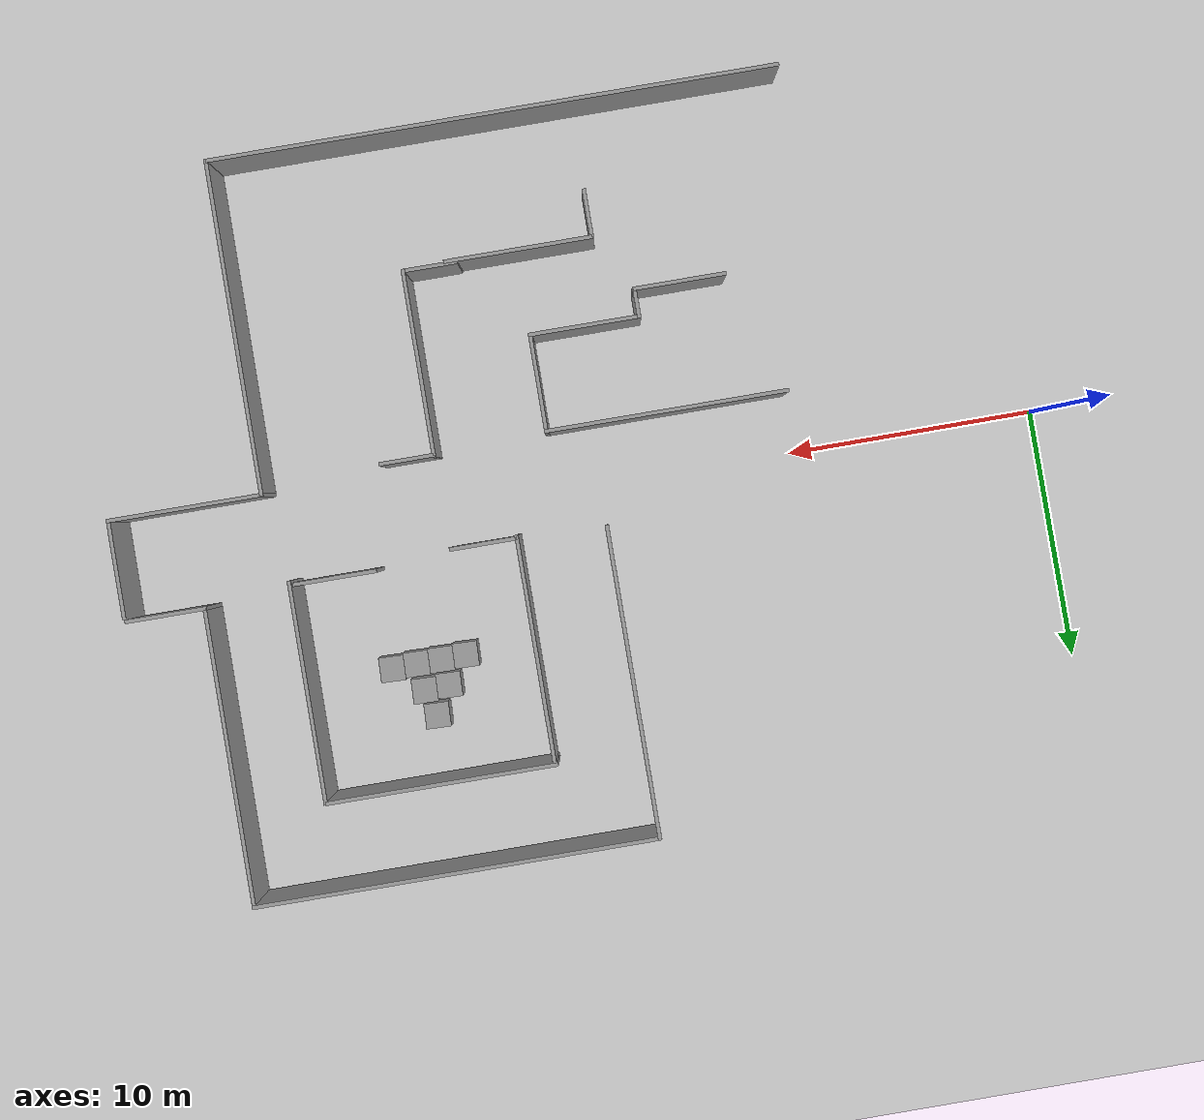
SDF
<sdf version="1.7">
 <world name="default">
  <model name="ground_plane">
   <static>1</static>
   <link name="link">
    <collision name="collision">
     <geometry><plane><normal>0 0 1</normal><size>100 100</size></plane></geometry>
     <surface><friction><ode><mu>100</mu><mu2>50</mu2></ode></friction></surface>
    </collision>
    <visual name="visual">
     <cast_shadows>0</cast_shadows>
     <geometry><plane><normal>0 0 1</normal><size>100 100</size></plane></geometry>
     <material>
      <script><uri>file://media/materials/scripts/gazebo.material</uri><name>Gazebo/Grey</name></script>
     </material>
    </visual>
   </link>
  </model>
  <model name="unit_box_clone_2">
   <pose>27.3089 5.88323 0.499995 0 -1e-05 -0.029595</pose>
   <link name="link">
    <inertial>
     <mass>1</mass>
     <inertia>
      <ixx>0.166667</ixx>
      <ixy>0</ixy>
      <ixz>0</ixz>
      <iyy>0.166667</iyy>
      <iyz>0</iyz>
      <izz>0.166667</izz>
     </inertia>
    </inertial>
    <collision name="collision"><geometry><box><size>1 1 1</size></box></geometry></collision>
    <visual name="visual">
     <geometry><box><size>1 1 1</size></box></geometry>
     <material>
      <script><name>Gazebo/Grey</name><uri>file://media/materials/scripts/gazebo.material</uri></script>
     </material>
    </visual>
   </link>
  </model>
  <model name="unit_box_clone_3">
   <pose>26.3071 5.84665 0.499995 0 -1e-05 -0.029863</pose>
   <link name="link">
    <inertial>
     <mass>1</mass>
     <inertia>
      <ixx>0.166667</ixx>
      <ixy>0</ixy>
      <ixz>0</ixz>
      <iyy>0.166667</iyy>
      <iyz>0</iyz>
      <izz>0.166667</izz>
     </inertia>
    </inertial>
    <collision name="collision"><geometry><box><size>1 1 1</size></box></geometry></collision>
    <visual name="visual">
     <geometry><box><size>1 1 1</size></box></geometry>
     <material>
      <script><name>Gazebo/Grey</name><uri>file://media/materials/scripts/gazebo.material</uri></script>
     </material>
    </visual>
   </link>
  </model>
  <model name="unit_box_clone_4">
   <pose>25.306 5.83515 0.499995 -1e-05 -0 -0.02955</pose>
   <link name="link">
    <inertial>
     <mass>1</mass>
     <inertia>
      <ixx>0.166667</ixx>
      <ixy>0</ixy>
      <ixz>0</ixz>
      <iyy>0.166667</iyy>
      <iyz>0</iyz>
      <izz>0.166667</izz>
     </inertia>
    </inertial>
    <collision name="collision"><geometry><box><size>1 1 1</size></box></geometry></collision>
    <visual name="visual">
     <geometry><box><size>1 1 1</size></box></geometry>
     <material>
      <script><name>Gazebo/Grey</name><uri>file://media/materials/scripts/gazebo.material</uri></script>
     </material>
    </visual>
   </link>
  </model>
  <model name="unit_box_clone_5">
   <pose>24.3045 5.81054 0.499995 1e-05 -0 -0.029494</pose>
   <link name="link">
    <inertial>
     <mass>1</mass>
     <inertia>
      <ixx>0.166667</ixx>
      <ixy>0</ixy>
      <ixz>0</ixz>
      <iyy>0.166667</iyy>
      <iyz>0</iyz>
      <izz>0.166667</izz>
     </inertia>
    </inertial>
    <collision name="collision"><geometry><box><size>1 1 1</size></box></geometry></collision>
    <visual name="visual">
     <geometry><box><size>1 1 1</size></box></geometry>
     <material>
      <script><name>Gazebo/Grey</name><uri>file://media/materials/scripts/gazebo.material</uri></script>
     </material>
    </visual>
   </link>
  </model>
  <model name="unit_box_clone_6">
   <pose>25.163 6.89755 0.499995 -1e-05 -0 -0.033907</pose>
   <link name="link">
    <inertial>
     <mass>1</mass>
     <inertia>
      <ixx>0.166667</ixx>
      <ixy>0</ixy>
      <ixz>0</ixz>
      <iyy>0.166667</iyy>
      <iyz>0</iyz>
      <izz>0.166667</izz>
     </inertia>
    </inertial>
    <collision name="collision"><geometry><box><size>1 1 1</size></box></geometry></collision>
    <visual name="visual">
     <geometry><box><size>1 1 1</size></box></geometry>
     <material>
      <script><name>Gazebo/Grey</name><uri>file://media/materials/scripts/gazebo.material</uri></script>
     </material>
    </visual>
   </link>
  </model>
  <model name="unit_box_clone_7">
   <pose>26.1653 6.94853 0.499995 -0 1e-05 -0.033898</pose>
   <link name="link">
    <inertial>
     <mass>1</mass>
     <inertia>
      <ixx>0.166667</ixx>
      <ixy>0</ixy>
      <ixz>0</ixz>
      <iyy>0.166667</iyy>
      <iyz>0</iyz>
      <izz>0.166667</izz>
     </inertia>
    </inertial>
    <collision name="collision"><geometry><box><size>1 1 1</size></box></geometry></collision>
    <visual name="visual">
     <geometry><box><size>1 1 1</size></box></geometry>
     <material>
      <script><name>Gazebo/Grey</name><uri>file://media/materials/scripts/gazebo.material</uri></script>
     </material>
    </visual>
   </link>
  </model>
  <model name="unit_box_clone_8">
   <pose>25.8231 8.01623 0.499995 0 -1e-05 -0.036844</pose>
   <link name="link">
    <inertial>
     <mass>1</mass>
     <inertia>
      <ixx>0.166667</ixx>
      <ixy>0</ixy>
      <ixz>0</ixz>
      <iyy>0.166667</iyy>
      <iyz>0</iyz>
      <izz>0.166667</izz>
     </inertia>
    </inertial>
    <collision name="collision"><geometry><box><size>1 1 1</size></box></geometry></collision>
    <visual name="visual">
     <geometry><box><size>1 1 1</size></box></geometry>
     <material>
      <script><name>Gazebo/Grey</name><uri>file://media/materials/scripts/gazebo.material</uri></script>
     </material>
    </visual>
   </link>
  </model>
  <model name="complex_clutter_env">
   <link name="Wall_11">
    <pose>4.525 -10.0361 0 0 -0 1.5708</pose>
    <visual name="Wall_11_Visual">
     <pose>0 0 1.25 0 -0 0</pose>
     <geometry><box><size>2 0.15 2.5</size></box></geometry>
     <material>
      <script><uri>file://media/materials/scripts/gazebo.material</uri><name>Gazebo/Grey</name></script>
      <ambient>1 1 1 1</ambient>
      <shader type="pixel"/>
     </material>
     <meta><layer>0</layer></meta>
    </visual>
    <collision name="Wall_11_Collision">
     <pose>0 0 1.25 0 -0 0</pose>
     <geometry><box><size>2 0.15 2.5</size></box></geometry>
     <surface>
      <friction>
       <ode><mu>1</mu><mu2>1</mu2><fdir1>0 0 0</fdir1><slip1>0</slip1><slip2>0</slip2></ode>
       <torsional>
        <coefficient>1</coefficient>
        <patch_radius>0</patch_radius>
        <surface_radius>0</surface_radius>
        <use_patch_radius>1</use_patch_radius>
        <ode><slip>0</slip></ode>
       </torsional>
      </friction>
      <bounce><restitution_coefficient>0</restitution_coefficient><threshold>1e+06</threshold></bounce>
      <contact>
       <collide_without_contact>0</collide_without_contact>
       <collide_without_contact_bitmask>1</collide_without_contact_bitmask>
       <collide_bitmask>1</collide_bitmask>
       <ode>
        <soft_cfm>0</soft_cfm>
        <soft_erp>0.2</soft_erp>
        <kp>1e+13</kp>
        <kd>1</kd>
        <max_vel>0.01</max_vel>
        <min_depth>0</min_depth>
       </ode>
       <bullet>
        <split_impulse>1</split_impulse>
        <split_impulse_penetration_threshold>-0.01</split_impulse_penetration_threshold>
        <soft_cfm>0</soft_cfm>
        <soft_erp>0.2</soft_erp>
        <kp>1e+13</kp>
        <kd>1</kd>
       </bullet>
      </contact>
     </surface>
    </collision>
   </link>
   <link name="Wall_12">
    <pose>7.45 -9.11109 0 0 -0 0</pose>
    <visual name="Wall_12_Visual">
     <pose>0 0 1.25 0 -0 0</pose>
     <geometry><box><size>6 0.15 2.5</size></box></geometry>
     <material>
      <script><uri>file://media/materials/scripts/gazebo.material</uri><name>Gazebo/Grey</name></script>
      <ambient>1 1 1 1</ambient>
      <shader type="pixel"/>
     </material>
     <meta><layer>0</layer></meta>
    </visual>
    <collision name="Wall_12_Collision">
     <pose>0 0 1.25 0 -0 0</pose>
     <geometry><box><size>6 0.15 2.5</size></box></geometry>
     <surface>
      <friction>
       <ode><mu>1</mu><mu2>1</mu2><fdir1>0 0 0</fdir1><slip1>0</slip1><slip2>0</slip2></ode>
       <torsional>
        <coefficient>1</coefficient>
        <patch_radius>0</patch_radius>
        <surface_radius>0</surface_radius>
        <use_patch_radius>1</use_patch_radius>
        <ode><slip>0</slip></ode>
       </torsional>
      </friction>
      <bounce><restitution_coefficient>0</restitution_coefficient><threshold>1e+06</threshold></bounce>
      <contact>
       <collide_without_contact>0</collide_without_contact>
       <collide_without_contact_bitmask>1</collide_without_contact_bitmask>
       <collide_bitmask>1</collide_bitmask>
       <ode>
        <soft_cfm>0</soft_cfm>
        <soft_erp>0.2</soft_erp>
        <kp>1e+13</kp>
        <kd>1</kd>
        <max_vel>0.01</max_vel>
        <min_depth>0</min_depth>
       </ode>
       <bullet>
        <split_impulse>1</split_impulse>
        <split_impulse_penetration_threshold>-0.01</split_impulse_penetration_threshold>
        <soft_cfm>0</soft_cfm>
        <soft_erp>0.2</soft_erp>
        <kp>1e+13</kp>
        <kd>1</kd>
       </bullet>
      </contact>
     </surface>
    </collision>
   </link>
   <link name="Wall_17">
    <pose>5.38998 -5.70822 0 0 -0 3.14159</pose>
    <visual name="Wall_17_Visual">
     <pose>0 0 1.25 0 -0 0</pose>
     <geometry><box><size>4.5 0.15 2.5</size></box></geometry>
     <material>
      <script><uri>file://media/materials/scripts/gazebo.material</uri><name>Gazebo/Grey</name></script>
      <ambient>1 1 1 1</ambient>
      <shader type="pixel"/>
     </material>
     <meta><layer>0</layer></meta>
    </visual>
    <collision name="Wall_17_Collision">
     <pose>0 0 1.25 0 -0 0</pose>
     <geometry><box><size>4.5 0.15 2.5</size></box></geometry>
     <surface>
      <friction>
       <ode><mu>1</mu><mu2>1</mu2><fdir1>0 0 0</fdir1><slip1>0</slip1><slip2>0</slip2></ode>
       <torsional>
        <coefficient>1</coefficient>
        <patch_radius>0</patch_radius>
        <surface_radius>0</surface_radius>
        <use_patch_radius>1</use_patch_radius>
        <ode><slip>0</slip></ode>
       </torsional>
      </friction>
      <bounce><restitution_coefficient>0</restitution_coefficient><threshold>1e+06</threshold></bounce>
      <contact>
       <collide_without_contact>0</collide_without_contact>
       <collide_without_contact_bitmask>1</collide_without_contact_bitmask>
       <collide_bitmask>1</collide_bitmask>
       <ode>
        <soft_cfm>0</soft_cfm>
        <soft_erp>0.2</soft_erp>
        <kp>1e+13</kp>
        <kd>1</kd>
        <max_vel>0.01</max_vel>
        <min_depth>0</min_depth>
       </ode>
       <bullet>
        <split_impulse>1</split_impulse>
        <split_impulse_penetration_threshold>-0.01</split_impulse_penetration_threshold>
        <soft_cfm>0</soft_cfm>
        <soft_erp>0.2</soft_erp>
        <kp>1e+13</kp>
        <kd>1</kd>
       </bullet>
      </contact>
     </surface>
    </collision>
   </link>
   <link name="Wall_18">
    <pose>3.21498 -6.25822 0 0 0 -1.5708</pose>
    <visual name="Wall_18_Visual">
     <pose>0 0 1.25 0 -0 0</pose>
     <geometry><box><size>1.25 0.15 2.5</size></box></geometry>
     <material>
      <script><uri>file://media/materials/scripts/gazebo.material</uri><name>Gazebo/Grey</name></script>
      <ambient>1 1 1 1</ambient>
      <shader type="pixel"/>
     </material>
     <meta><layer>0</layer></meta>
    </visual>
    <collision name="Wall_18_Collision">
     <pose>0 0 1.25 0 -0 0</pose>
     <geometry><box><size>1.25 0.15 2.5</size></box></geometry>
     <surface>
      <friction>
       <ode><mu>1</mu><mu2>1</mu2><fdir1>0 0 0</fdir1><slip1>0</slip1><slip2>0</slip2></ode>
       <torsional>
        <coefficient>1</coefficient>
        <patch_radius>0</patch_radius>
        <surface_radius>0</surface_radius>
        <use_patch_radius>1</use_patch_radius>
        <ode><slip>0</slip></ode>
       </torsional>
      </friction>
      <bounce><restitution_coefficient>0</restitution_coefficient><threshold>1e+06</threshold></bounce>
      <contact>
       <collide_without_contact>0</collide_without_contact>
       <collide_without_contact_bitmask>1</collide_without_contact_bitmask>
       <collide_bitmask>1</collide_bitmask>
       <ode>
        <soft_cfm>0</soft_cfm>
        <soft_erp>0.2</soft_erp>
        <kp>1e+13</kp>
        <kd>1</kd>
        <max_vel>0.01</max_vel>
        <min_depth>0</min_depth>
       </ode>
       <bullet>
        <split_impulse>1</split_impulse>
        <split_impulse_penetration_threshold>-0.01</split_impulse_penetration_threshold>
        <soft_cfm>0</soft_cfm>
        <soft_erp>0.2</soft_erp>
        <kp>1e+13</kp>
        <kd>1</kd>
       </bullet>
      </contact>
     </surface>
    </collision>
   </link>
   <link name="Wall_19">
    <pose>1.41498 -6.80822 0 0 -0 3.14159</pose>
    <visual name="Wall_19_Visual">
     <pose>0 0 1.25 0 -0 0</pose>
     <geometry><box><size>3.75 0.15 2.5</size></box></geometry>
     <material>
      <script><uri>file://media/materials/scripts/gazebo.material</uri><name>Gazebo/Grey</name></script>
      <ambient>1 1 1 1</ambient>
      <shader type="pixel"/>
     </material>
     <meta><layer>0</layer></meta>
    </visual>
    <collision name="Wall_19_Collision">
     <pose>0 0 1.25 0 -0 0</pose>
     <geometry><box><size>3.75 0.15 2.5</size></box></geometry>
     <surface>
      <friction>
       <ode><mu>1</mu><mu2>1</mu2><fdir1>0 0 0</fdir1><slip1>0</slip1><slip2>0</slip2></ode>
       <torsional>
        <coefficient>1</coefficient>
        <patch_radius>0</patch_radius>
        <surface_radius>0</surface_radius>
        <use_patch_radius>1</use_patch_radius>
        <ode><slip>0</slip></ode>
       </torsional>
      </friction>
      <bounce><restitution_coefficient>0</restitution_coefficient><threshold>1e+06</threshold></bounce>
      <contact>
       <collide_without_contact>0</collide_without_contact>
       <collide_without_contact_bitmask>1</collide_without_contact_bitmask>
       <collide_bitmask>1</collide_bitmask>
       <ode>
        <soft_cfm>0</soft_cfm>
        <soft_erp>0.2</soft_erp>
        <kp>1e+13</kp>
        <kd>1</kd>
        <max_vel>0.01</max_vel>
        <min_depth>0</min_depth>
       </ode>
       <bullet>
        <split_impulse>1</split_impulse>
        <split_impulse_penetration_threshold>-0.01</split_impulse_penetration_threshold>
        <soft_cfm>0</soft_cfm>
        <soft_erp>0.2</soft_erp>
        <kp>1e+13</kp>
        <kd>1</kd>
       </bullet>
      </contact>
     </surface>
    </collision>
   </link>
   <link name="Wall_25">
    <pose>7.56498 -3.78322 0 0 -0 1.5708</pose>
    <visual name="Wall_25_Visual">
     <pose>0 0 1.25 0 -0 0</pose>
     <geometry><box><size>4 0.15 2.5</size></box></geometry>
     <material>
      <script><uri>file://media/materials/scripts/gazebo.material</uri><name>Gazebo/Grey</name></script>
      <ambient>1 1 1 1</ambient>
      <shader type="pixel"/>
     </material>
     <meta><layer>0</layer></meta>
    </visual>
    <collision name="Wall_25_Collision">
     <pose>0 0 1.25 0 -0 0</pose>
     <geometry><box><size>4 0.15 2.5</size></box></geometry>
     <surface>
      <friction>
       <ode><mu>1</mu><mu2>1</mu2><fdir1>0 0 0</fdir1><slip1>0</slip1><slip2>0</slip2></ode>
       <torsional>
        <coefficient>1</coefficient>
        <patch_radius>0</patch_radius>
        <surface_radius>0</surface_radius>
        <use_patch_radius>1</use_patch_radius>
        <ode><slip>0</slip></ode>
       </torsional>
      </friction>
      <bounce><restitution_coefficient>0</restitution_coefficient><threshold>1e+06</threshold></bounce>
      <contact>
       <collide_without_contact>0</collide_without_contact>
       <collide_without_contact_bitmask>1</collide_without_contact_bitmask>
       <collide_bitmask>1</collide_bitmask>
       <ode>
        <soft_cfm>0</soft_cfm>
        <soft_erp>0.2</soft_erp>
        <kp>1e+13</kp>
        <kd>1</kd>
        <max_vel>0.01</max_vel>
        <min_depth>0</min_depth>
       </ode>
       <bullet>
        <split_impulse>1</split_impulse>
        <split_impulse_penetration_threshold>-0.01</split_impulse_penetration_threshold>
        <soft_cfm>0</soft_cfm>
        <soft_erp>0.2</soft_erp>
        <kp>1e+13</kp>
        <kd>1</kd>
       </bullet>
      </contact>
     </surface>
    </collision>
   </link>
   <link name="Wall_26">
    <pose>7.56498 -1.85822 0 0 -0 0</pose>
    <visual name="Wall_26_Visual">
     <pose>0 0 1.25 0 -0 0</pose>
     <geometry><box><size>0.15 0.15 2.5</size></box></geometry>
     <material>
      <script><uri>file://media/materials/scripts/gazebo.material</uri><name>Gazebo/Grey</name></script>
      <ambient>1 1 1 1</ambient>
      <shader type="pixel"/>
     </material>
     <meta><layer>0</layer></meta>
    </visual>
    <collision name="Wall_26_Collision">
     <pose>0 0 1.25 0 -0 0</pose>
     <geometry><box><size>0.15 0.15 2.5</size></box></geometry>
     <surface>
      <friction>
       <ode><mu>1</mu><mu2>1</mu2><fdir1>0 0 0</fdir1><slip1>0</slip1><slip2>0</slip2></ode>
       <torsional>
        <coefficient>1</coefficient>
        <patch_radius>0</patch_radius>
        <surface_radius>0</surface_radius>
        <use_patch_radius>1</use_patch_radius>
        <ode><slip>0</slip></ode>
       </torsional>
      </friction>
      <bounce><restitution_coefficient>0</restitution_coefficient><threshold>1e+06</threshold></bounce>
      <contact>
       <collide_without_contact>0</collide_without_contact>
       <collide_without_contact_bitmask>1</collide_without_contact_bitmask>
       <collide_bitmask>1</collide_bitmask>
       <ode>
        <soft_cfm>0</soft_cfm>
        <soft_erp>0.2</soft_erp>
        <kp>1e+13</kp>
        <kd>1</kd>
        <max_vel>0.01</max_vel>
        <min_depth>0</min_depth>
       </ode>
       <bullet>
        <split_impulse>1</split_impulse>
        <split_impulse_penetration_threshold>-0.01</split_impulse_penetration_threshold>
        <soft_cfm>0</soft_cfm>
        <soft_erp>0.2</soft_erp>
        <kp>1e+13</kp>
        <kd>1</kd>
       </bullet>
      </contact>
     </surface>
    </collision>
   </link>
   <link name="Wall_33">
    <pose>9.40943 6.5233 0 0 -0 1.5708</pose>
    <inertial>
     <inertia><ixx>0</ixx><ixy>0</ixy><ixz>0</ixz><iyy>0</iyy><iyz>0</iyz><izz>0</izz></inertia>
     <mass>0</mass>
    </inertial>
    <visual name="Wall_33_Visual">
     <pose>0 0 1.25 0 -0 0</pose>
     <geometry><box><size>9.11585 0.15 2.5</size></box></geometry>
     <material>
      <script><uri>file://media/materials/scripts/gazebo.material</uri><name>Gazebo/Grey</name></script>
      <ambient>1 1 1 1</ambient>
      <shader type="pixel"/>
     </material>
     <meta><layer>0</layer></meta>
    </visual>
    <collision name="Wall_33_Collision">
     <pose>0 0 1.25 0 -0 0</pose>
     <geometry><box><size>9.11585 0.15 2.5</size></box></geometry>
     <surface>
      <friction>
       <ode><mu>1</mu><mu2>1</mu2><fdir1>0 0 0</fdir1><slip1>0</slip1><slip2>0</slip2></ode>
       <torsional>
        <coefficient>1</coefficient>
        <patch_radius>0</patch_radius>
        <surface_radius>0</surface_radius>
        <use_patch_radius>1</use_patch_radius>
        <ode><slip>0</slip></ode>
       </torsional>
      </friction>
      <bounce><restitution_coefficient>0</restitution_coefficient><threshold>1e+06</threshold></bounce>
      <contact>
       <collide_without_contact>0</collide_without_contact>
       <collide_without_contact_bitmask>1</collide_without_contact_bitmask>
       <collide_bitmask>1</collide_bitmask>
       <ode>
        <soft_cfm>0</soft_cfm>
        <soft_erp>0.2</soft_erp>
        <kp>1e+13</kp>
        <kd>1</kd>
        <max_vel>0.01</max_vel>
        <min_depth>0</min_depth>
       </ode>
       <bullet>
        <split_impulse>1</split_impulse>
        <split_impulse_penetration_threshold>-0.01</split_impulse_penetration_threshold>
        <soft_cfm>0</soft_cfm>
        <soft_erp>0.2</soft_erp>
        <kp>1e+13</kp>
        <kd>1</kd>
       </bullet>
      </contact>
     </surface>
    </collision>
   </link>
   <link name="Wall_34">
    <pose>13.9057 11.0918 0 0 -0 0</pose>
    <visual name="Wall_34_Visual">
     <pose>0 0 1.25 0 -0 0</pose>
     <geometry><box><size>9.25 0.15 2.5</size></box></geometry>
     <material>
      <script><uri>file://media/materials/scripts/gazebo.material</uri><name>Gazebo/Grey</name></script>
      <ambient>1 1 1 1</ambient>
      <shader type="pixel"/>
     </material>
     <meta><layer>0</layer></meta>
    </visual>
    <collision name="Wall_34_Collision">
     <pose>0 0 1.25 0 -0 0</pose>
     <geometry><box><size>9.25 0.15 2.5</size></box></geometry>
     <surface>
      <friction>
       <ode><mu>1</mu><mu2>1</mu2><fdir1>0 0 0</fdir1><slip1>0</slip1><slip2>0</slip2></ode>
       <torsional>
        <coefficient>1</coefficient>
        <patch_radius>0</patch_radius>
        <surface_radius>0</surface_radius>
        <use_patch_radius>1</use_patch_radius>
        <ode><slip>0</slip></ode>
       </torsional>
      </friction>
      <bounce><restitution_coefficient>0</restitution_coefficient><threshold>1e+06</threshold></bounce>
      <contact>
       <collide_without_contact>0</collide_without_contact>
       <collide_without_contact_bitmask>1</collide_without_contact_bitmask>
       <collide_bitmask>1</collide_bitmask>
       <ode>
        <soft_cfm>0</soft_cfm>
        <soft_erp>0.2</soft_erp>
        <kp>1e+13</kp>
        <kd>1</kd>
        <max_vel>0.01</max_vel>
        <min_depth>0</min_depth>
       </ode>
       <bullet>
        <split_impulse>1</split_impulse>
        <split_impulse_penetration_threshold>-0.01</split_impulse_penetration_threshold>
        <soft_cfm>0</soft_cfm>
        <soft_erp>0.2</soft_erp>
        <kp>1e+13</kp>
        <kd>1</kd>
       </bullet>
      </contact>
     </surface>
    </collision>
   </link>
   <link name="Wall_35">
    <pose>18.5151 6.69363 0 0 0 -1.5708</pose>
    <inertial>
     <inertia><ixx>0</ixx><ixy>0</ixy><ixz>0</ixz><iyy>0</iyy><iyz>0</iyz><izz>0</izz></inertia>
     <mass>0</mass>
    </inertial>
    <visual name="Wall_35_Visual">
     <pose>0 0 1.25 0 -0 0</pose>
     <geometry><box><size>8.89081 0.15 2.5</size></box></geometry>
     <material>
      <script><uri>file://media/materials/scripts/gazebo.material</uri><name>Gazebo/Grey</name></script>
      <ambient>1 1 1 1</ambient>
      <shader type="pixel"/>
     </material>
     <meta><layer>0</layer></meta>
    </visual>
    <collision name="Wall_35_Collision">
     <pose>0 0 1.25 0 -0 0</pose>
     <geometry><box><size>8.89081 0.15 2.5</size></box></geometry>
     <surface>
      <friction>
       <ode><mu>1</mu><mu2>1</mu2><fdir1>0 0 0</fdir1><slip1>0</slip1><slip2>0</slip2></ode>
       <torsional>
        <coefficient>1</coefficient>
        <patch_radius>0</patch_radius>
        <surface_radius>0</surface_radius>
        <use_patch_radius>1</use_patch_radius>
        <ode><slip>0</slip></ode>
       </torsional>
      </friction>
      <bounce><restitution_coefficient>0</restitution_coefficient><threshold>1e+06</threshold></bounce>
      <contact>
       <collide_without_contact>0</collide_without_contact>
       <collide_without_contact_bitmask>1</collide_without_contact_bitmask>
       <collide_bitmask>1</collide_bitmask>
       <ode>
        <soft_cfm>0</soft_cfm>
        <soft_erp>0.2</soft_erp>
        <kp>1e+13</kp>
        <kd>1</kd>
        <max_vel>0.01</max_vel>
        <min_depth>0</min_depth>
       </ode>
       <bullet>
        <split_impulse>1</split_impulse>
        <split_impulse_penetration_threshold>-0.01</split_impulse_penetration_threshold>
        <soft_cfm>0</soft_cfm>
        <soft_erp>0.2</soft_erp>
        <kp>1e+13</kp>
        <kd>1</kd>
       </bullet>
      </contact>
     </surface>
    </collision>
   </link>
   <link name="Wall_37">
    <pose>25.125 0.663907 0 0 0 -1.5708</pose>
    <visual name="Wall_37_Visual">
     <pose>0 0 1.25 0 -0 0</pose>
     <geometry><box><size>4 0.15 2.5</size></box></geometry>
     <material>
      <script><uri>file://media/materials/scripts/gazebo.material</uri><name>Gazebo/Grey</name></script>
      <ambient>1 1 1 1</ambient>
      <shader type="pixel"/>
     </material>
     <meta><layer>0</layer></meta>
    </visual>
    <collision name="Wall_37_Collision">
     <pose>0 0 1.25 0 -0 0</pose>
     <geometry><box><size>4 0.15 2.5</size></box></geometry>
     <surface>
      <friction>
       <ode><mu>1</mu><mu2>1</mu2><fdir1>0 0 0</fdir1><slip1>0</slip1><slip2>0</slip2></ode>
       <torsional>
        <coefficient>1</coefficient>
        <patch_radius>0</patch_radius>
        <surface_radius>0</surface_radius>
        <use_patch_radius>1</use_patch_radius>
        <ode><slip>0</slip></ode>
       </torsional>
      </friction>
      <bounce><restitution_coefficient>0</restitution_coefficient><threshold>1e+06</threshold></bounce>
      <contact>
       <collide_without_contact>0</collide_without_contact>
       <collide_without_contact_bitmask>1</collide_without_contact_bitmask>
       <collide_bitmask>1</collide_bitmask>
       <ode>
        <soft_cfm>0</soft_cfm>
        <soft_erp>0.2</soft_erp>
        <kp>1e+13</kp>
        <kd>1</kd>
        <max_vel>0.01</max_vel>
        <min_depth>0</min_depth>
       </ode>
       <bullet>
        <split_impulse>1</split_impulse>
        <split_impulse_penetration_threshold>-0.01</split_impulse_penetration_threshold>
        <soft_cfm>0</soft_cfm>
        <soft_erp>0.2</soft_erp>
        <kp>1e+13</kp>
        <kd>1</kd>
       </bullet>
      </contact>
     </surface>
    </collision>
   </link>
   <link name="Wall_38">
    <pose>22.075 -1.26109 0 0 -0 3.14159</pose>
    <visual name="Wall_38_Visual">
     <pose>0 0 1.25 0 -0 0</pose>
     <geometry><box><size>6.25 0.15 2.5</size></box></geometry>
     <material>
      <script><uri>file://media/materials/scripts/gazebo.material</uri><name>Gazebo/Grey</name></script>
      <ambient>1 1 1 1</ambient>
      <shader type="pixel"/>
     </material>
     <meta><layer>0</layer></meta>
    </visual>
    <collision name="Wall_38_Collision">
     <pose>0 0 1.25 0 -0 0</pose>
     <geometry><box><size>6.25 0.15 2.5</size></box></geometry>
     <surface>
      <friction>
       <ode><mu>1</mu><mu2>1</mu2><fdir1>0 0 0</fdir1><slip1>0</slip1><slip2>0</slip2></ode>
       <torsional>
        <coefficient>1</coefficient>
        <patch_radius>0</patch_radius>
        <surface_radius>0</surface_radius>
        <use_patch_radius>1</use_patch_radius>
        <ode><slip>0</slip></ode>
       </torsional>
      </friction>
      <bounce><restitution_coefficient>0</restitution_coefficient><threshold>1e+06</threshold></bounce>
      <contact>
       <collide_without_contact>0</collide_without_contact>
       <collide_without_contact_bitmask>1</collide_without_contact_bitmask>
       <collide_bitmask>1</collide_bitmask>
       <ode>
        <soft_cfm>0</soft_cfm>
        <soft_erp>0.2</soft_erp>
        <kp>1e+13</kp>
        <kd>1</kd>
        <max_vel>0.01</max_vel>
        <min_depth>0</min_depth>
       </ode>
       <bullet>
        <split_impulse>1</split_impulse>
        <split_impulse_penetration_threshold>-0.01</split_impulse_penetration_threshold>
        <soft_cfm>0</soft_cfm>
        <soft_erp>0.2</soft_erp>
        <kp>1e+13</kp>
        <kd>1</kd>
       </bullet>
      </contact>
     </surface>
    </collision>
   </link>
   <link name="Wall_39">
    <pose>19.025 -7.93609 0 0 0 -1.5708</pose>
    <visual name="Wall_39_Visual">
     <pose>0 0 1.25 0 -0 0</pose>
     <geometry><box><size>13.5 0.15 2.5</size></box></geometry>
     <material>
      <script><uri>file://media/materials/scripts/gazebo.material</uri><name>Gazebo/Grey</name></script>
      <ambient>1 1 1 1</ambient>
      <shader type="pixel"/>
     </material>
     <meta><layer>0</layer></meta>
    </visual>
    <collision name="Wall_39_Collision">
     <pose>0 0 1.25 0 -0 0</pose>
     <geometry><box><size>13.5 0.15 2.5</size></box></geometry>
     <surface>
      <friction>
       <ode><mu>1</mu><mu2>1</mu2><fdir1>0 0 0</fdir1><slip1>0</slip1><slip2>0</slip2></ode>
       <torsional>
        <coefficient>1</coefficient>
        <patch_radius>0</patch_radius>
        <surface_radius>0</surface_radius>
        <use_patch_radius>1</use_patch_radius>
        <ode><slip>0</slip></ode>
       </torsional>
      </friction>
      <bounce><restitution_coefficient>0</restitution_coefficient><threshold>1e+06</threshold></bounce>
      <contact>
       <collide_without_contact>0</collide_without_contact>
       <collide_without_contact_bitmask>1</collide_without_contact_bitmask>
       <collide_bitmask>1</collide_bitmask>
       <ode>
        <soft_cfm>0</soft_cfm>
        <soft_erp>0.2</soft_erp>
        <kp>1e+13</kp>
        <kd>1</kd>
        <max_vel>0.01</max_vel>
        <min_depth>0</min_depth>
       </ode>
       <bullet>
        <split_impulse>1</split_impulse>
        <split_impulse_penetration_threshold>-0.01</split_impulse_penetration_threshold>
        <soft_cfm>0</soft_cfm>
        <soft_erp>0.2</soft_erp>
        <kp>1e+13</kp>
        <kd>1</kd>
       </bullet>
      </contact>
     </surface>
    </collision>
   </link>
   <link name="Wall_40">
    <pose>7.6 -14.6111 0 0 -0 3.14159</pose>
    <visual name="Wall_40_Visual">
     <pose>0 0 1.25 0 -0 0</pose>
     <geometry><box><size>23 0.15 2.5</size></box></geometry>
     <material>
      <script><uri>file://media/materials/scripts/gazebo.material</uri><name>Gazebo/Grey</name></script>
      <ambient>1 1 1 1</ambient>
      <shader type="pixel"/>
     </material>
     <meta><layer>0</layer></meta>
    </visual>
    <collision name="Wall_40_Collision">
     <pose>0 0 1.25 0 -0 0</pose>
     <geometry><box><size>23 0.15 2.5</size></box></geometry>
     <surface>
      <friction>
       <ode><mu>1</mu><mu2>1</mu2><fdir1>0 0 0</fdir1><slip1>0</slip1><slip2>0</slip2></ode>
       <torsional>
        <coefficient>1</coefficient>
        <patch_radius>0</patch_radius>
        <surface_radius>0</surface_radius>
        <use_patch_radius>1</use_patch_radius>
        <ode><slip>0</slip></ode>
       </torsional>
      </friction>
      <bounce><restitution_coefficient>0</restitution_coefficient><threshold>1e+06</threshold></bounce>
      <contact>
       <collide_without_contact>0</collide_without_contact>
       <collide_without_contact_bitmask>1</collide_without_contact_bitmask>
       <collide_bitmask>1</collide_bitmask>
       <ode>
        <soft_cfm>0</soft_cfm>
        <soft_erp>0.2</soft_erp>
        <kp>1e+13</kp>
        <kd>1</kd>
        <max_vel>0.01</max_vel>
        <min_depth>0</min_depth>
       </ode>
       <bullet>
        <split_impulse>1</split_impulse>
        <split_impulse_penetration_threshold>-0.01</split_impulse_penetration_threshold>
        <soft_cfm>0</soft_cfm>
        <soft_erp>0.2</soft_erp>
        <kp>1e+13</kp>
        <kd>1</kd>
       </bullet>
      </contact>
     </surface>
    </collision>
   </link>
   <link name="Wall_46">
    <pose>11.0347 -9.02252 0 0 -0 0</pose>
    <visual name="Wall_46_Visual">
     <pose>0 0 1.25 0 -0 0</pose>
     <geometry><box><size>2.25 0.15 2.5</size></box></geometry>
     <material>
      <script><uri>file://media/materials/scripts/gazebo.material</uri><name>Gazebo/Grey</name></script>
      <ambient>1 1 1 1</ambient>
      <shader type="pixel"/>
     </material>
     <meta><layer>0</layer></meta>
    </visual>
    <collision name="Wall_46_Collision">
     <pose>0 0 1.25 0 -0 0</pose>
     <geometry><box><size>2.25 0.15 2.5</size></box></geometry>
     <surface>
      <friction>
       <ode><mu>1</mu><mu2>1</mu2><fdir1>0 0 0</fdir1><slip1>0</slip1><slip2>0</slip2></ode>
       <torsional>
        <coefficient>1</coefficient>
        <patch_radius>0</patch_radius>
        <surface_radius>0</surface_radius>
        <use_patch_radius>1</use_patch_radius>
        <ode><slip>0</slip></ode>
       </torsional>
      </friction>
      <bounce><restitution_coefficient>0</restitution_coefficient><threshold>1e+06</threshold></bounce>
      <contact>
       <collide_without_contact>0</collide_without_contact>
       <collide_without_contact_bitmask>1</collide_without_contact_bitmask>
       <collide_bitmask>1</collide_bitmask>
       <ode>
        <soft_cfm>0</soft_cfm>
        <soft_erp>0.2</soft_erp>
        <kp>1e+13</kp>
        <kd>1</kd>
        <max_vel>0.01</max_vel>
        <min_depth>0</min_depth>
       </ode>
       <bullet>
        <split_impulse>1</split_impulse>
        <split_impulse_penetration_threshold>-0.01</split_impulse_penetration_threshold>
        <soft_cfm>0</soft_cfm>
        <soft_erp>0.2</soft_erp>
        <kp>1e+13</kp>
        <kd>1</kd>
       </bullet>
      </contact>
     </surface>
    </collision>
   </link>
   <link name="Wall_47">
    <pose>12.0847 -5.34752 0 0 -0 1.5708</pose>
    <visual name="Wall_47_Visual">
     <pose>0 0 1.25 0 -0 0</pose>
     <geometry><box><size>7.5 0.15 2.5</size></box></geometry>
     <material>
      <script><uri>file://media/materials/scripts/gazebo.material</uri><name>Gazebo/Grey</name></script>
      <ambient>1 1 1 1</ambient>
      <shader type="pixel"/>
     </material>
     <meta><layer>0</layer></meta>
    </visual>
    <collision name="Wall_47_Collision">
     <pose>0 0 1.25 0 -0 0</pose>
     <geometry><box><size>7.5 0.15 2.5</size></box></geometry>
     <surface>
      <friction>
       <ode><mu>1</mu><mu2>1</mu2><fdir1>0 0 0</fdir1><slip1>0</slip1><slip2>0</slip2></ode>
       <torsional>
        <coefficient>1</coefficient>
        <patch_radius>0</patch_radius>
        <surface_radius>0</surface_radius>
        <use_patch_radius>1</use_patch_radius>
        <ode><slip>0</slip></ode>
       </torsional>
      </friction>
      <bounce><restitution_coefficient>0</restitution_coefficient><threshold>1e+06</threshold></bounce>
      <contact>
       <collide_without_contact>0</collide_without_contact>
       <collide_without_contact_bitmask>1</collide_without_contact_bitmask>
       <collide_bitmask>1</collide_bitmask>
       <ode>
        <soft_cfm>0</soft_cfm>
        <soft_erp>0.2</soft_erp>
        <kp>1e+13</kp>
        <kd>1</kd>
        <max_vel>0.01</max_vel>
        <min_depth>0</min_depth>
       </ode>
       <bullet>
        <split_impulse>1</split_impulse>
        <split_impulse_penetration_threshold>-0.01</split_impulse_penetration_threshold>
        <soft_cfm>0</soft_cfm>
        <soft_erp>0.2</soft_erp>
        <kp>1e+13</kp>
        <kd>1</kd>
       </bullet>
      </contact>
     </surface>
    </collision>
   </link>
   <link name="Wall_48">
    <pose>13.1347 -1.67252 0 0 -0 0</pose>
    <visual name="Wall_48_Visual">
     <pose>0 0 1.25 0 -0 0</pose>
     <geometry><box><size>2.25 0.15 2.5</size></box></geometry>
     <material>
      <script><uri>file://media/materials/scripts/gazebo.material</uri><name>Gazebo/Grey</name></script>
      <ambient>1 1 1 1</ambient>
      <shader type="pixel"/>
     </material>
     <meta><layer>0</layer></meta>
    </visual>
    <collision name="Wall_48_Collision">
     <pose>0 0 1.25 0 -0 0</pose>
     <geometry><box><size>2.25 0.15 2.5</size></box></geometry>
     <surface>
      <friction>
       <ode><mu>1</mu><mu2>1</mu2><fdir1>0 0 0</fdir1><slip1>0</slip1><slip2>0</slip2></ode>
       <torsional>
        <coefficient>1</coefficient>
        <patch_radius>0</patch_radius>
        <surface_radius>0</surface_radius>
        <use_patch_radius>1</use_patch_radius>
        <ode><slip>0</slip></ode>
       </torsional>
      </friction>
      <bounce><restitution_coefficient>0</restitution_coefficient><threshold>1e+06</threshold></bounce>
      <contact>
       <collide_without_contact>0</collide_without_contact>
       <collide_without_contact_bitmask>1</collide_without_contact_bitmask>
       <collide_bitmask>1</collide_bitmask>
       <ode>
        <soft_cfm>0</soft_cfm>
        <soft_erp>0.2</soft_erp>
        <kp>1e+13</kp>
        <kd>1</kd>
        <max_vel>0.01</max_vel>
        <min_depth>0</min_depth>
       </ode>
       <bullet>
        <split_impulse>1</split_impulse>
        <split_impulse_penetration_threshold>-0.01</split_impulse_penetration_threshold>
        <soft_cfm>0</soft_cfm>
        <soft_erp>0.2</soft_erp>
        <kp>1e+13</kp>
        <kd>1</kd>
       </bullet>
      </contact>
     </surface>
    </collision>
   </link>
   <link name="Wall_50">
    <pose>2.76498 -1.85822 0 0 -0 3.14159</pose>
    <visual name="Wall_50_Visual">
     <pose>0 0 1.25 0 -0 0</pose>
     <geometry><box><size>9.75 0.15 2.5</size></box></geometry>
     <material>
      <script><uri>file://media/materials/scripts/gazebo.material</uri><name>Gazebo/Grey</name></script>
      <ambient>1 1 1 1</ambient>
      <shader type="pixel"/>
     </material>
     <meta><layer>0</layer></meta>
    </visual>
    <collision name="Wall_50_Collision">
     <pose>0 0 1.25 0 -0 0</pose>
     <geometry><box><size>9.75 0.15 2.5</size></box></geometry>
     <surface>
      <friction>
       <ode><mu>1</mu><mu2>1</mu2><fdir1>0 0 0</fdir1><slip1>0</slip1><slip2>0</slip2></ode>
       <torsional>
        <coefficient>1</coefficient>
        <patch_radius>0</patch_radius>
        <surface_radius>0</surface_radius>
        <use_patch_radius>1</use_patch_radius>
        <ode><slip>0</slip></ode>
       </torsional>
      </friction>
      <bounce><restitution_coefficient>0</restitution_coefficient><threshold>1e+06</threshold></bounce>
      <contact>
       <collide_without_contact>0</collide_without_contact>
       <collide_without_contact_bitmask>1</collide_without_contact_bitmask>
       <collide_bitmask>1</collide_bitmask>
       <ode>
        <soft_cfm>0</soft_cfm>
        <soft_erp>0.2</soft_erp>
        <kp>1e+13</kp>
        <kd>1</kd>
        <max_vel>0.01</max_vel>
        <min_depth>0</min_depth>
       </ode>
       <bullet>
        <split_impulse>1</split_impulse>
        <split_impulse_penetration_threshold>-0.01</split_impulse_penetration_threshold>
        <soft_cfm>0</soft_cfm>
        <soft_erp>0.2</soft_erp>
        <kp>1e+13</kp>
        <kd>1</kd>
       </bullet>
      </contact>
     </surface>
    </collision>
   </link>
   <link name="Wall_56">
    <pose>10.725 2.08891 0 0 -0 0</pose>
    <visual name="Wall_56_Visual">
     <pose>0 0 1.25 0 -0 0</pose>
     <geometry><box><size>2.75 0.15 2.5</size></box></geometry>
     <material>
      <script><uri>file://media/materials/scripts/gazebo.material</uri><name>Gazebo/Grey</name></script>
      <ambient>1 1 1 1</ambient>
      <shader type="pixel"/>
     </material>
     <meta><layer>0</layer></meta>
    </visual>
    <collision name="Wall_56_Collision">
     <pose>0 0 1.25 0 -0 0</pose>
     <geometry><box><size>2.75 0.15 2.5</size></box></geometry>
     <surface>
      <friction>
       <ode><mu>1</mu><mu2>1</mu2><fdir1>0 0 0</fdir1><slip1>0</slip1><slip2>0</slip2></ode>
       <torsional>
        <coefficient>1</coefficient>
        <patch_radius>0</patch_radius>
        <surface_radius>0</surface_radius>
        <use_patch_radius>1</use_patch_radius>
        <ode><slip>0</slip></ode>
       </torsional>
      </friction>
      <bounce><restitution_coefficient>0</restitution_coefficient><threshold>1e+06</threshold></bounce>
      <contact>
       <collide_without_contact>0</collide_without_contact>
       <collide_without_contact_bitmask>1</collide_without_contact_bitmask>
       <collide_bitmask>1</collide_bitmask>
       <ode>
        <soft_cfm>0</soft_cfm>
        <soft_erp>0.2</soft_erp>
        <kp>1e+13</kp>
        <kd>1</kd>
        <max_vel>0.01</max_vel>
        <min_depth>0</min_depth>
       </ode>
       <bullet>
        <split_impulse>1</split_impulse>
        <split_impulse_penetration_threshold>-0.01</split_impulse_penetration_threshold>
        <soft_cfm>0</soft_cfm>
        <soft_erp>0.2</soft_erp>
        <kp>1e+13</kp>
        <kd>1</kd>
       </bullet>
      </contact>
     </surface>
    </collision>
   </link>
   <link name="Wall_58">
    <pose>16.835 2.42879 -0.194327 0 -0 3.14159</pose>
    <visual name="Wall_58_Visual">
     <pose>0 0 1.25 0 -0 0</pose>
     <geometry><box><size>3.5 0.15 2.5</size></box></geometry>
     <material>
      <script><uri>file://media/materials/scripts/gazebo.material</uri><name>Gazebo/Grey</name></script>
      <ambient>1 1 1 1</ambient>
      <shader type="pixel"/>
     </material>
     <meta><layer>0</layer></meta>
    </visual>
    <collision name="Wall_58_Collision">
     <pose>0 0 1.25 0 -0 0</pose>
     <geometry><box><size>3.5 0.15 2.5</size></box></geometry>
     <surface>
      <friction>
       <ode><mu>1</mu><mu2>1</mu2><fdir1>0 0 0</fdir1><slip1>0</slip1><slip2>0</slip2></ode>
       <torsional>
        <coefficient>1</coefficient>
        <patch_radius>0</patch_radius>
        <surface_radius>0</surface_radius>
        <use_patch_radius>1</use_patch_radius>
        <ode><slip>0</slip></ode>
       </torsional>
      </friction>
      <bounce><restitution_coefficient>0</restitution_coefficient><threshold>1e+06</threshold></bounce>
      <contact>
       <collide_without_contact>0</collide_without_contact>
       <collide_without_contact_bitmask>1</collide_without_contact_bitmask>
       <collide_bitmask>1</collide_bitmask>
       <ode>
        <soft_cfm>0</soft_cfm>
        <soft_erp>0.2</soft_erp>
        <kp>1e+13</kp>
        <kd>1</kd>
        <max_vel>0.01</max_vel>
        <min_depth>0</min_depth>
       </ode>
       <bullet>
        <split_impulse>1</split_impulse>
        <split_impulse_penetration_threshold>-0.01</split_impulse_penetration_threshold>
        <soft_cfm>0</soft_cfm>
        <soft_erp>0.2</soft_erp>
        <kp>1e+13</kp>
        <kd>1</kd>
       </bullet>
      </contact>
     </surface>
    </collision>
   </link>
   <link name="Wall_60">
    <pose>21.945 8.68609 0 0 -0 1.5708</pose>
    <visual name="Wall_60_Visual">
     <pose>0 0 1.25 0 -0 0</pose>
     <geometry><box><size>12 0.15 2.5</size></box></geometry>
     <material>
      <script><uri>file://media/materials/scripts/gazebo.material</uri><name>Gazebo/Grey</name></script>
      <ambient>1 1 1 1</ambient>
      <shader type="pixel"/>
     </material>
     <meta><layer>0</layer></meta>
    </visual>
    <collision name="Wall_60_Collision">
     <pose>0 0 1.25 0 -0 0</pose>
     <geometry><box><size>12 0.15 2.5</size></box></geometry>
     <surface>
      <friction>
       <ode><mu>1</mu><mu2>1</mu2><fdir1>0 0 0</fdir1><slip1>0</slip1><slip2>0</slip2></ode>
       <torsional>
        <coefficient>1</coefficient>
        <patch_radius>0</patch_radius>
        <surface_radius>0</surface_radius>
        <use_patch_radius>1</use_patch_radius>
        <ode><slip>0</slip></ode>
       </torsional>
      </friction>
      <bounce><restitution_coefficient>0</restitution_coefficient><threshold>1e+06</threshold></bounce>
      <contact>
       <collide_without_contact>0</collide_without_contact>
       <collide_without_contact_bitmask>1</collide_without_contact_bitmask>
       <collide_bitmask>1</collide_bitmask>
       <ode>
        <soft_cfm>0</soft_cfm>
        <soft_erp>0.2</soft_erp>
        <kp>1e+13</kp>
        <kd>1</kd>
        <max_vel>0.01</max_vel>
        <min_depth>0</min_depth>
       </ode>
       <bullet>
        <split_impulse>1</split_impulse>
        <split_impulse_penetration_threshold>-0.01</split_impulse_penetration_threshold>
        <soft_cfm>0</soft_cfm>
        <soft_erp>0.2</soft_erp>
        <kp>1e+13</kp>
        <kd>1</kd>
       </bullet>
      </contact>
     </surface>
    </collision>
   </link>
   <link name="Wall_61">
    <pose>13.895 14.6111 0 0 -0 3.14159</pose>
    <visual name="Wall_61_Visual">
     <pose>0 0 1.25 0 -0 0</pose>
     <geometry><box><size>16.25 0.15 2.5</size></box></geometry>
     <material>
      <script><uri>file://media/materials/scripts/gazebo.material</uri><name>Gazebo/Grey</name></script>
      <ambient>1 1 1 1</ambient>
      <shader type="pixel"/>
     </material>
     <meta><layer>0</layer></meta>
    </visual>
    <collision name="Wall_61_Collision">
     <pose>0 0 1.25 0 -0 0</pose>
     <geometry><box><size>16.25 0.15 2.5</size></box></geometry>
     <surface>
      <friction>
       <ode><mu>1</mu><mu2>1</mu2><fdir1>0 0 0</fdir1><slip1>0</slip1><slip2>0</slip2></ode>
       <torsional>
        <coefficient>1</coefficient>
        <patch_radius>0</patch_radius>
        <surface_radius>0</surface_radius>
        <use_patch_radius>1</use_patch_radius>
        <ode><slip>0</slip></ode>
       </torsional>
      </friction>
      <bounce><restitution_coefficient>0</restitution_coefficient><threshold>1e+06</threshold></bounce>
      <contact>
       <collide_without_contact>0</collide_without_contact>
       <collide_without_contact_bitmask>1</collide_without_contact_bitmask>
       <collide_bitmask>1</collide_bitmask>
       <ode>
        <soft_cfm>0</soft_cfm>
        <soft_erp>0.2</soft_erp>
        <kp>1e+13</kp>
        <kd>1</kd>
        <max_vel>0.01</max_vel>
        <min_depth>0</min_depth>
       </ode>
       <bullet>
        <split_impulse>1</split_impulse>
        <split_impulse_penetration_threshold>-0.01</split_impulse_penetration_threshold>
        <soft_cfm>0</soft_cfm>
        <soft_erp>0.2</soft_erp>
        <kp>1e+13</kp>
        <kd>1</kd>
       </bullet>
      </contact>
     </surface>
    </collision>
   </link>
   <link name="Wall_62">
    <pose>5.84497 8.43609 0 0 0 -1.5708</pose>
    <visual name="Wall_62_Visual">
     <pose>0 0 1.25 0 -0 0</pose>
     <geometry><box><size>12.5 0.15 2.5</size></box></geometry>
     <material>
      <script><uri>file://media/materials/scripts/gazebo.material</uri><name>Gazebo/Grey</name></script>
      <ambient>1 1 1 1</ambient>
      <shader type="pixel"/>
     </material>
     <meta><layer>0</layer></meta>
    </visual>
    <collision name="Wall_62_Collision">
     <pose>0 0 1.25 0 -0 0</pose>
     <geometry><box><size>12.5 0.15 2.5</size></box></geometry>
     <surface>
      <friction>
       <ode><mu>1</mu><mu2>1</mu2><fdir1>0 0 0</fdir1><slip1>0</slip1><slip2>0</slip2></ode>
       <torsional>
        <coefficient>1</coefficient>
        <patch_radius>0</patch_radius>
        <surface_radius>0</surface_radius>
        <use_patch_radius>1</use_patch_radius>
        <ode><slip>0</slip></ode>
       </torsional>
      </friction>
      <bounce><restitution_coefficient>0</restitution_coefficient><threshold>1e+06</threshold></bounce>
      <contact>
       <collide_without_contact>0</collide_without_contact>
       <collide_without_contact_bitmask>1</collide_without_contact_bitmask>
       <collide_bitmask>1</collide_bitmask>
       <ode>
        <soft_cfm>0</soft_cfm>
        <soft_erp>0.2</soft_erp>
        <kp>1e+13</kp>
        <kd>1</kd>
        <max_vel>0.01</max_vel>
        <min_depth>0</min_depth>
       </ode>
       <bullet>
        <split_impulse>1</split_impulse>
        <split_impulse_penetration_threshold>-0.01</split_impulse_penetration_threshold>
        <soft_cfm>0</soft_cfm>
        <soft_erp>0.2</soft_erp>
        <kp>1e+13</kp>
        <kd>1</kd>
       </bullet>
      </contact>
     </surface>
    </collision>
   </link>
   <link name="Wall_71">
    <pose>23.495 2.76109 0 0 -0 0</pose>
    <visual name="Wall_71_Visual">
     <pose>0 0 1.25 0 -0 0</pose>
     <geometry><box><size>3.25 0.15 2.5</size></box></geometry>
     <material>
      <script><uri>file://media/materials/scripts/gazebo.material</uri><name>Gazebo/Grey</name></script>
      <ambient>1 1 1 1</ambient>
      <shader type="pixel"/>
     </material>
     <meta><layer>0</layer></meta>
    </visual>
    <collision name="Wall_71_Collision">
     <pose>0 0 1.25 0 -0 0</pose>
     <geometry><box><size>3.25 0.15 2.5</size></box></geometry>
     <surface>
      <friction>
       <ode><mu>1</mu><mu2>1</mu2><fdir1>0 0 0</fdir1><slip1>0</slip1><slip2>0</slip2></ode>
       <torsional>
        <coefficient>1</coefficient>
        <patch_radius>0</patch_radius>
        <surface_radius>0</surface_radius>
        <use_patch_radius>1</use_patch_radius>
        <ode><slip>0</slip></ode>
       </torsional>
      </friction>
      <bounce><restitution_coefficient>0</restitution_coefficient><threshold>1e+06</threshold></bounce>
      <contact>
       <collide_without_contact>0</collide_without_contact>
       <collide_without_contact_bitmask>1</collide_without_contact_bitmask>
       <collide_bitmask>1</collide_bitmask>
       <ode>
        <soft_cfm>0</soft_cfm>
        <soft_erp>0.2</soft_erp>
        <kp>1e+13</kp>
        <kd>1</kd>
        <max_vel>0.01</max_vel>
        <min_depth>0</min_depth>
       </ode>
       <bullet>
        <split_impulse>1</split_impulse>
        <split_impulse_penetration_threshold>-0.01</split_impulse_penetration_threshold>
        <soft_cfm>0</soft_cfm>
        <soft_erp>0.2</soft_erp>
        <kp>1e+13</kp>
        <kd>1</kd>
       </bullet>
      </contact>
     </surface>
    </collision>
   </link>
   <static>1</static>
   <pose>12.0029 -0.563606 0 0 -0 0</pose>
  </model>
 </world>
</sdf>
